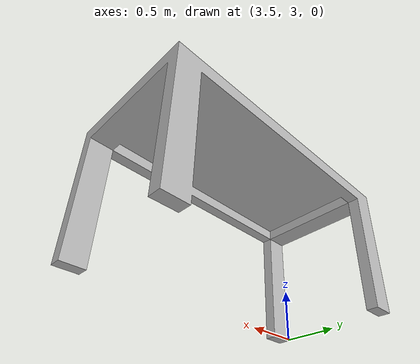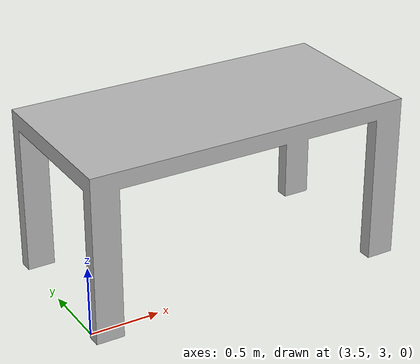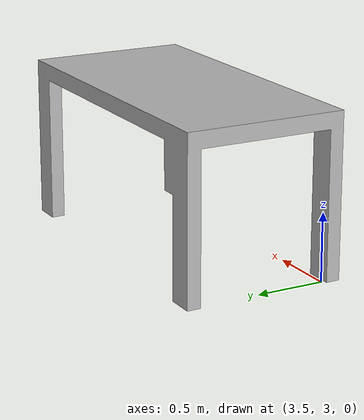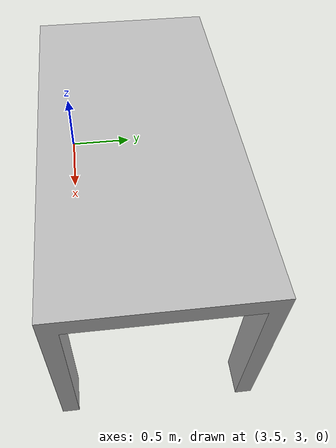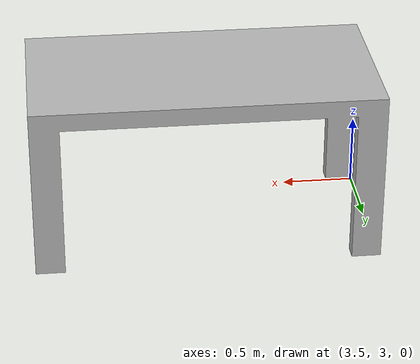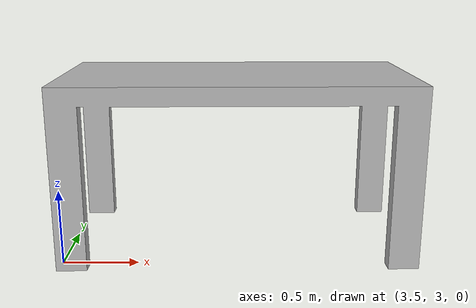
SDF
<?xml version='1.0'?>
<sdf version='1.6'>
  <model name='table_for_lunch'>
    <link name='nist_elevated_floor_120'>
      <pose frame=''>4.66159 3.46103 0 0 -0 0</pose>
      <self_collide>0</self_collide>
      <kinematic>0</kinematic>
      <gravity>1</gravity>
      <inertial>
        <mass>1</mass>
        <pose frame=''>0 0 0 0 -0 0</pose>
        <inertia>
          <ixx>1</ixx>
          <ixy>0</ixy>
          <ixz>0</ixz>
          <iyy>1</iyy>
          <iyz>0</iyz>
          <izz>1</izz>
        </inertia>
      </inertial>
      <visual name='visual'>
        <geometry>
          <mesh>
            <uri>model://nist_elevated_floor_120/meshes/nist_elevated_floor_120.dae</uri>
            <scale>2 1 1</scale>
          </mesh>
        </geometry>
        <material>
          <shader type='pixel'>
            <normal_map>__default__</normal_map>
          </shader>
        </material>
        <pose frame=''>0 0 0 0 -0 0</pose>
        <cast_shadows>1</cast_shadows>
        <transparency>0</transparency>
      </visual>
      <collision name='collision'>
        <laser_retro>0</laser_retro>
        <max_contacts>10</max_contacts>
        <pose frame=''>0 0 0 0 -0 0</pose>
        <geometry>
          <mesh>
            <uri>/home/mustar/.gazebo/models/nist_elevated_floor_120/meshes/nist_elevated_floor_120.dae</uri>
            <scale>2 1 1</scale>
          </mesh>
        </geometry>
        <surface>
          <friction>
            <ode>
              <mu>1</mu>
              <mu2>1</mu2>
              <fdir1>0 0 0</fdir1>
              <slip1>0</slip1>
              <slip2>0</slip2>
            </ode>
            <torsional>
              <coefficient>1</coefficient>
              <patch_radius>0</patch_radius>
              <surface_radius>0</surface_radius>
              <use_patch_radius>1</use_patch_radius>
              <ode>
                <slip>0</slip>
              </ode>
            </torsional>
          </friction>
          <bounce>
            <restitution_coefficient>0</restitution_coefficient>
            <threshold>1e+06</threshold>
          </bounce>
          <contact>
            <collide_without_contact>0</collide_without_contact>
            <collide_without_contact_bitmask>1</collide_without_contact_bitmask>
            <collide_bitmask>1</collide_bitmask>
            <ode>
              <soft_cfm>0</soft_cfm>
              <soft_erp>0.2</soft_erp>
              <kp>1e+13</kp>
              <kd>1</kd>
              <max_vel>0.01</max_vel>
              <min_depth>0</min_depth>
            </ode>
            <bullet>
              <split_impulse>1</split_impulse>
              <split_impulse_penetration_threshold>-0.01</split_impulse_penetration_threshold>
              <soft_cfm>0</soft_cfm>
              <soft_erp>0.2</soft_erp>
              <kp>1e+13</kp>
              <kd>1</kd>
            </bullet>
          </contact>
        </surface>
      </collision>
    </link>
    <static>1</static>
    <allow_auto_disable>1</allow_auto_disable>
  </model>
</sdf>
